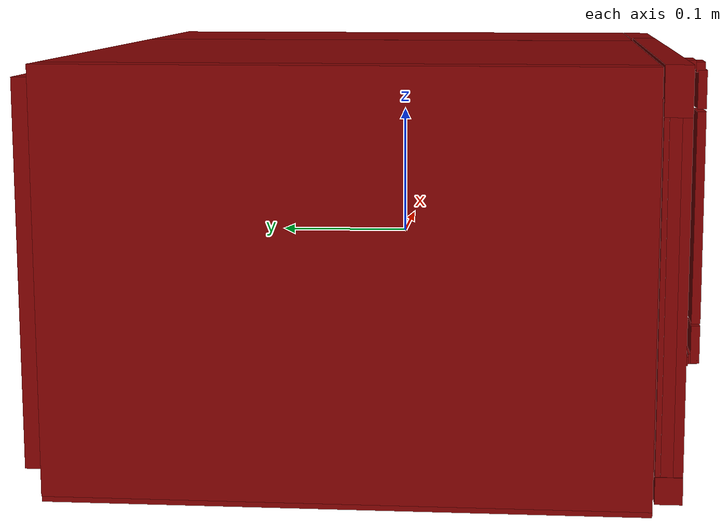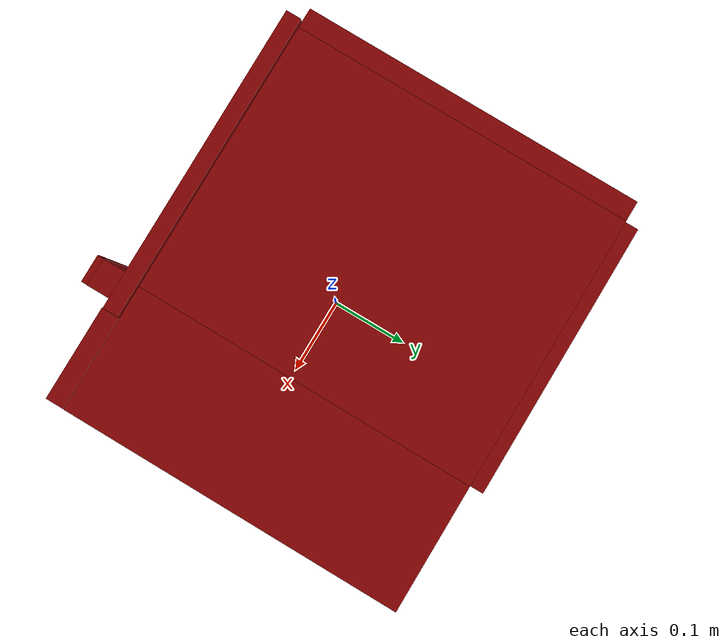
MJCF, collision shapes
<?xml version='1.0' encoding='UTF-8'?>
<mujoco model="model">
  <option timestep="0.002" gravity="0.0 0.0 -9.81"/>
  <compiler angle="radian"/>
  <asset>
    <mesh file="visuals/door.obj" name="door_vis"/>
    <mesh file="visuals/door_Clear.obj" name="door_Clear_vis"/>
    <mesh file="visuals/Body001.obj" name="Body001_vis"/>
    <mesh file="visuals/Disc001.obj" name="Disc001_vis"/>
    <texture file="visuals/T_BC001.png" name="Body001_material" type="2d"/>
    <material name="Body001_material" rgba="1 1 1 1.0" texture="Body001_material" shininess="0.05" specular="2"/>
    <texture file="visuals/T_BC001.png" name="door_material" type="2d"/>
    <material name="door_material" rgba="1 1 1 1.0" texture="door_material" shininess="0.1" specular="2"/>
    <texture file="visuals/T_BC001.png" name="door_Clear_material" type="2d"/>
    <material name="door_Clear_material" rgba="1 1 1 0.800000011920929" texture="door_Clear_material" shininess="0.5" specular="0.99"/>
    <texture file="visuals/T_BC001.png" name="Disc001_material" type="2d"/>
    <material name="Disc001_material" rgba="1 1 1 1.0" texture="Disc001_material" shininess="0.5" specular="0.99"/>
  </asset>
  <default>
    <default class="visual">
      <geom conaffinity="0" contype="0" group="1" type="mesh"/>
    </default>
    <default class="collision">
      <geom group="0" rgba="0.5 0 0 0.5"/>
    </default>
    <default class="spawn">
      <geom group="0" rgba="1 1 1 0.5" contype="0" conaffinity="0"/>
      <site group="0" rgba="1 1 1 0.5"/>
    </default>
    <default class="region">
      <geom group="1" conaffinity="0" contype="0" rgba="0 1 0 0"/>
    </default>
  </default>
  <worldbody>
    <body>
      <body name="object">
        <geom class="collision" type="box" pos="0.2107895314693451 -0.21120357513427734 -0.06515777111053467" size="0.01317546609789133 0.0005261290352791548 0.0060850814916193485" quat="1.0 0.0 0.0 0.0" name="start_button" rgba="0.0 0.5 0 0.5"/>
        <geom class="collision" type="box" pos="0.17591890692710876 -0.21120357513427734 -0.06433486938476562" size="0.01317546609789133 0.0005261290352791548 0.0060850814916193485" quat="1.0 0.0 0.0 0.0" name="stop_button" rgba="0.0 0.5 0 0.5"/>
        <geom class="collision" type="cylinder" pos="-0.06651823222637177 -0.017916962504386902 -0.12402904778718948" size="0.11959520727396011 0.00042977306293323636" quat="1.0 0.0 0.0 0.0" name="tray" rgba="0 1 0 0.5"/>
        <geom mesh="Body001_vis" type="mesh" solimp="0.998 0.998 0.001" solref="0.001 1" friction="0.95 0.3 0.1" class="visual" material="Body001_material"/>
        <geom class="collision" type="box" pos="3.0484749004244804e-05 0.022623255848884583 0.1446904093027115" size="0.25820857286453247 0.21042445302009583 0.006273864768445492" quat="1.0 0.0 0.0 0.0"/>
        <geom class="collision" type="box" pos="3.0484749004244804e-05 0.022623255848884583 -0.14052753150463104" size="0.25820857286453247 0.21042445302009583 0.01205441914498806" quat="1.0 0.0 0.0 0.0"/>
        <geom class="collision" type="box" pos="-0.2468826025724411 0.02262323908507824 0.0012796465307474136" size="0.012285958975553513 0.21042445302009583 0.14973342418670654" quat="1.0 0.0 0.0 0.0"/>
        <geom class="collision" type="box" pos="0.18093076348304749 0.02262323908507824 0.0012796474620699883" size="0.07805979251861572 0.21042445302009583 0.14973343908786774" quat="1.0 0.0 0.0 0.0"/>
        <geom class="collision" type="box" pos="-0.06674535572528839 0.20593304932117462 0.0022817617282271385" size="0.169485941529274 0.04541696235537529 0.138419046998024" quat="1.0 0.0 0.0 0.0"/>
        <geom class="collision" type="box" pos="0.20113587379455566 -0.1992921680212021 0.0012796474620699883" size="0.05766458436846733 0.010887525044381618 0.14973397552967072" quat="1.0 0.0 0.0 0.0"/>
        <body name="door">
          <joint axis="0.0 0.0 1.0" pos="-0.24977095425128937 -0.19990307092666626 -0.0023396313190460205" limited="true" name="microjoint" range="-1.5707963267948966 0.0" type="hinge" damping="1" frictionloss="1" armature=".01" stiffness="0.05"/>
          <geom mesh="door_vis" type="mesh" solimp="0.998 0.998 0.001" solref="0.001 1" friction="0.95 0.3 0.1" class="visual" material="door_material"/>
          <geom class="collision" type="box" pos="-0.04542011022567749 -0.20517390966415405 -0.0038525881245732307" size="0.18542185425758362 0.0018394013168290257 0.12053580582141876" quat="1.0 0.0 0.0 0.0"/>
          <geom class="collision" type="box" pos="-0.05033497512340546 -0.19961731135845184 0.13441650569438934" size="0.19342300295829773 0.00953358318656683 0.01733875274658203" quat="1.0 0.0 0.0 0.0"/>
          <geom class="collision" type="box" pos="-0.053321473300457 -0.19961728155612946 -0.13806039094924927" size="0.191057488322258 0.009533612988889217 0.009686951525509357" quat="1.0 0.0 0.0 0.0"/>
          <geom class="collision" type="box" pos="-0.23956289887428284 -0.19961728155612946 -0.006564331240952015" size="0.0037130487617105246 0.009533603675663471 0.1236385852098465" quat="1.0 0.0 0.0 0.0"/>
          <geom class="collision" type="box" pos="-0.04794962704181671 -0.19717185199260712 -0.11775814741849899" size="0.18710340559482574 0.00814393162727356 0.009940880350768566" quat="1.0 0.0 0.0 0.0"/>
          <geom class="collision" type="box" pos="-0.22013837099075317 -0.1971718668937683 0.009401047602295876" size="0.014527391642332077 0.008144000545144081 0.11901064962148666" quat="1.0 0.0 0.0 0.0"/>
          <geom class="collision" type="box" pos="-0.03530915826559067 -0.1971718817949295 0.10830263793468475" size="0.17397348582744598 0.008143938146531582 0.009182426147162914" quat="1.0 0.0 0.0 0.0"/>
          <geom class="collision" type="box" pos="0.11787920445203781 -0.1971718668937683 0.0038358038291335106" size="0.021255847066640854 0.008143909275531769 0.11084886640310287" quat="1.0 0.0 0.0 0.0"/>
          <geom class="collision" type="box" pos="0.11502388119697571 -0.22604456543922424 0.13095985352993011" size="0.017390556633472443 0.01654268242418766 0.003893505549058318" quat="1.0 0.0 0.0 0.0"/>
          <geom class="collision" type="box" pos="0.11502388119697571 -0.2483864277601242 0.10972889512777328" size="0.017390556633472443 0.003893508343026042 0.01672578603029251" quat="1.0 0.0 0.0 0.0"/>
          <geom class="collision" type="box" pos="0.11502388119697571 -0.24653488397598267 0.12898488342761993" size="0.017390556633472443 0.0038935584016144276 0.004415370523929596" quat="1.0 0.0 0.0 0.0"/>
          <geom class="collision" type="box" pos="0.11502388119697571 -0.2483864277601242 -0.11499376595020294" size="0.017390556633472443 0.003893508343026042 0.01672578603029251" quat="1.0 0.0 0.0 0.0"/>
          <geom class="collision" type="box" pos="0.11502388119697571 -0.22604456543922424 -0.13025525212287903" size="0.017390556633472443 0.01654268242418766 0.003893505549058318" quat="1.0 0.0 0.0 0.0"/>
          <geom class="collision" type="box" pos="0.11502388119697571 -0.24653488397598267 -0.1279643177986145" size="0.017390556633472443 0.0038935409393161535 0.004415370523929596" quat="1.0 0.0 0.0 0.0"/>
          <geom class="collision" type="box" pos="0.11502388119697571 -0.2483864277601242 -0.0027951104566454887" size="0.017390556633472443 0.0038935202173888683 0.09348534792661667" quat="1.0 0.0 0.0 0.0" name="door_handle_main"/>
          <geom class="collision" type="box" pos="-0.052485011518001556 -0.1980217844247818 0.0017286501824855804" size="0.19113501906394958 0.004239619709551334 0.1454603224992752" quat="1.0 0.0 0.0 0.0" name="door_main"/>
          <body name="door_Clear">
            <geom mesh="door_Clear_vis" type="mesh" solimp="0.998 0.998 0.001" solref="0.001 1" friction="0.95 0.3 0.1" class="visual" material="door_Clear_material"/>
            <geom class="collision" type="box" pos="-0.04542011022567749 -0.20517390966415405 -0.0038525881245732307" size="0.18542185425758362 0.0018394013168290257 0.12053580582141876" quat="1.0 0.0 0.0 0.0"/>
          </body>
        </body>
        <body name="Disc001">
          <joint axis="0.0 0.0 -1.0" pos="-0.0659947618842125 -0.01807442493736744 -0.10512486100196838" limited="false" name="Disc001_joint" range="0 360" type="hinge" damping="1" frictionloss="1" armature=".01" stiffness="0.05"/>
          <geom mesh="Disc001_vis" type="mesh" solimp="0.998 0.998 0.001" solref="0.001 1" friction="0.95 0.3 0.1" class="visual" material="Disc001_material"/>
          <geom class="collision" type="cylinder" pos="-0.06651823222637177 -0.017916962504386902 -0.125995472073555" size="0.11959520727396011 0.000993678579106927" quat="1.0 0.0 0.0 0.0"/>
        </body>
        <geom class="region" name="reg_int" type="box" pos="-0.06568625569343567 -0.013979203999042511 0.007505528628826141" size="0.1641493866443634 0.16970718449354172 0.12664728409051895"/>
        <geom class="region" name="reg_main" type="box" pos="0.0 0.02090911567211151 0.0" size="0.26134998893737793 0.23220422661304474 0.15306345915794373"/>
      <geom class="region" name="reg_tray" type="cylinder" pos="-0.06651823222637177 -0.017916962504386902 0.005276768997544423" size="0.11959520727396011 0.12787604372180067"/></body>
    </body>
  </worldbody>
  <actuator>
    <motor name="microjoint_actuator" joint="microjoint" gear="10"/>
    <motor name="Disc001_joint_actuator" joint="Disc001_joint" gear="10"/>
  </actuator>
</mujoco>
